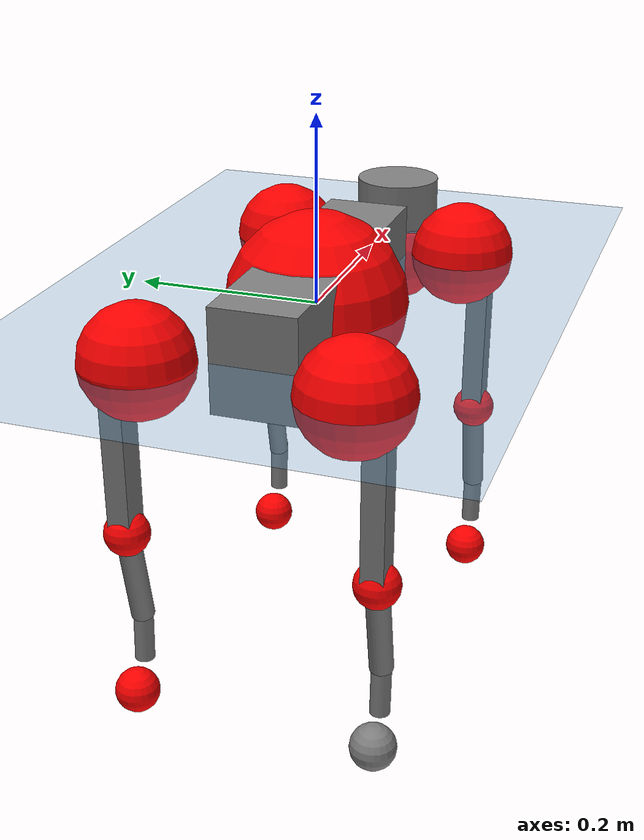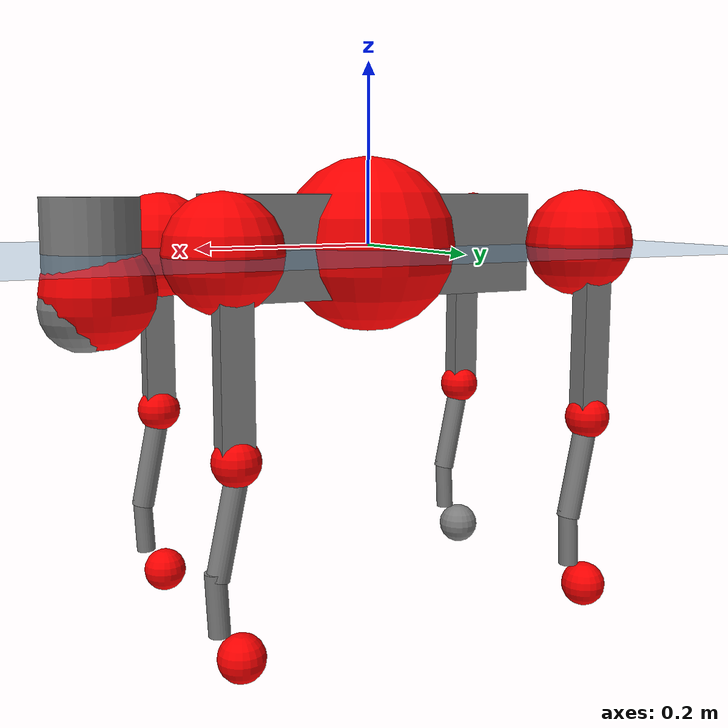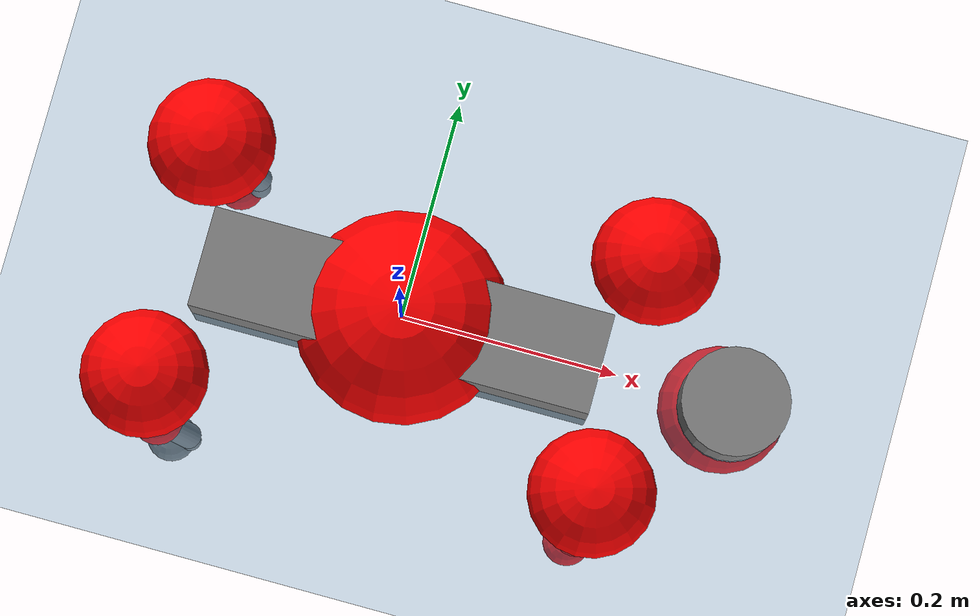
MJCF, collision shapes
<mujoco model="go2">
  <compiler angle="radian" assetdir="assets" balanceinertia="true" inertiafromgeom="false"/>

  <option timestep="0.005" density="1.2" viscosity="2e-05"/>

  <size nkey="1"/>

  <visual>
    <quality shadowsize="8192"/>
    <map shadowclip="0.5"/>
  </visual>

  <default>
    <default class="/">
      <geom contype="0" conaffinity="0" group="1" solref="-1000 -80"/>
      <site size="0.01 0.005 0.005" group="5"/>
      <general forcelimited="true" biastype="affine" gainprm="20" biasprm="0 -20 -0.5"/>
      <default class="go2">
        <joint armature="0.01" damping="0.01" frictionloss="0.2"/>
        <geom condim="1" margin="0.001"/>
        <default class="visual">
          <geom type="mesh" group="2"/>
        </default>
        <default class="collision">
          <geom group="3"/>
          <default class="foot">
            <geom size="0.022 0 0" condim="6" priority="1" friction="0.8 0.02 0.01" solimp="0.015 1 0.022"/>
          </default>
        </default>
        <default class="reward_collision_sphere">
          <geom group="5" rgba="1 0 0 1"/>
        </default>
      </default>
    </default>
  </default>

  <asset>
    <texture type="skybox" colorspace="auto" name="//unnamed_texture_0" builtin="gradient" rgb1="0.95 0.95 0.95" rgb2="0.95 0.95 0.95" width="100" height="600"/>
    <texture type="2d" colorspace="auto" name="texplane" builtin="checker" rgb1="0.345 0.575 0.748" rgb2="0.345 0.575 0.748" markrgb="1 1 1" width="512" height="512"/>
    <material name="MatPlane" class="/" texture="texplane" texuniform="true" texrepeat="2 2" specular="0.9"/>
    <material name="metal" class="/" rgba="0.9 0.95 0.95 1"/>
    <material name="black" class="/" rgba="0 0 0 1"/>
    <material name="white" class="/"/>
    <material name="gray" class="/" rgba="0.671705 0.692426 0.77427 1"/>
    <mesh name="base_0" class="/" file="base_0.obj"/>
    <mesh name="base_1" class="/" file="base_1.obj"/>
    <mesh name="base_2" class="/" file="base_2.obj"/>
    <mesh name="base_3" class="/" file="base_3.obj"/>
    <mesh name="base_4" class="/" file="base_4.obj"/>
    <mesh name="hip_0" class="/" file="hip_0.obj"/>
    <mesh name="hip_1" class="/" file="hip_1.obj"/>
    <mesh name="thigh_0" class="/" file="thigh_0.obj"/>
    <mesh name="thigh_1" class="/" file="thigh_1.obj"/>
    <mesh name="thigh_mirror_0" class="/" file="thigh_mirror_0.obj"/>
    <mesh name="thigh_mirror_1" class="/" file="thigh_mirror_1.obj"/>
    <mesh name="calf_0" class="/" file="calf_0.obj"/>
    <mesh name="calf_1" class="/" file="calf_1.obj"/>
    <mesh name="calf_mirror_0" class="/" file="calf_mirror_0.obj"/>
    <mesh name="calf_mirror_1" class="/" file="calf_mirror_1.obj"/>
    <mesh name="foot" class="/" file="foot.obj"/>
  </asset>

  <worldbody>
    <geom name="floor" class="/" size="100 100 0.125" type="plane" group="0" material="MatPlane"/>
    <light name="toplight_shadow" class="/" pos="0 0 5" dir="0.0990148 0.0990148 -0.990148" type="directional" ambient="0.04 0.04 0.04" diffuse="0.55 0.55 0.55" specular="0.12 0.12 0.12"/>
    <light name="toplight_fill" class="/" pos="0 0 5" dir="0.0990148 0.0990148 -0.990148" type="directional" castshadow="false" ambient="0.04 0.04 0.04" diffuse="0.3 0.3 0.3" specular="0.08 0.08 0.08"/>
    <body name="trunk" childclass="go2" pos="0.000317009 -0.000417562 0.00100175" quat="1 -0.00021761 -3.24661e-05 -4.62648e-05">
      <inertial pos="0.0231068 -0.00231173 -0.00413865" quat="-0.00148067 0.714179 -0.00247018 0.699957" mass="6.36346" diaginertia="0.146544 0.068768 0.0159305"/>
      <joint name="//unnamed_joint_0" type="free" armature="0" damping="0" frictionloss="0"/>
      <geom name="//unnamed_geom_1" class="visual" material="black" mesh="base_0"/>
      <geom name="//unnamed_geom_2" class="visual" material="black" mesh="base_1"/>
      <geom name="//unnamed_geom_3" class="visual" material="black" mesh="base_2"/>
      <geom name="//unnamed_geom_4" class="visual" material="white" mesh="base_3"/>
      <geom name="//unnamed_geom_5" class="visual" material="gray" mesh="base_4"/>
      <geom name="trunk_1" class="collision" size="0.183979 0.0457258 0.0557513" type="box"/>
      <geom name="trunk_2" class="collision" size="0.0489046 0.0440142" pos="0.307073 0 0.00920139" type="cylinder"/>
      <geom name="trunk_3" class="collision" size="0.0459703" pos="0.315693 0 -0.0552083"/>
      <geom name="//unnamed_geom_9" class="reward_collision_sphere" size="0.0978092"/>
      <geom name="//unnamed_geom_10" class="reward_collision_sphere" size="0.0586855" pos="0.301686 0 -0.0414063"/>
      <site name="imu" pos="-0.0300951 0.00216028 0.0410566" size="0.00978092"/>
      <camera name="track" pos="0 -1.87338 0" quat="0.707107 0.707107 0 0" mode="trackcom"/>
      <camera name="ego_camera" pos="0.336164 0 0.0414063" quat="-0.5 -0.5 0.5 0.5"/>
      <body name="FL_hip" pos="0.20788 0.0442157 0.00060951" quat="1 -1.96061e-05 1.58276e-05 -9.14097e-05">
        <inertial pos="-0.00582444 0.000724521 0.000522322" quat="0.505346 0.50289 0.500408 0.491242" mass="0.62988" diaginertia="0.00126852 0.000431376 0.000313569"/>
        <joint name="FL_hip_joint" pos="0 0 0" axis="0.999996 -0.00210196 -0.0016414" stiffness="0.0147759" range="-1.03854 1.05298" armature="0.00948691" damping="0.0116364" frictionloss="0.198372"/>
        <geom name="//unnamed_geom_11" class="visual" material="metal" mesh="hip_0"/>
        <geom name="//unnamed_geom_12" class="visual" material="gray" mesh="hip_1"/>
        <geom name="//unnamed_geom_13" class="collision" size="0.0449922 0.0195618" pos="0 0.0749351 0" quat="0.707107 0.707107 0 0" type="cylinder"/>
        <geom name="//unnamed_geom_14" class="reward_collision_sphere" size="0.0586855" pos="0 0.0655682 0"/>
        <body name="FL_thigh" pos="0.000114237 0.0887667 0.000338824" quat="0.999999 -0.000861907 0.000607615 0.000649169">
          <inertial pos="-0.0046472 -0.0182812 -0.030511" quat="0.832082 0.0851777 -0.0187371 0.547752" mass="1.06818" diaginertia="0.0084111 0.00431879 0.000576751"/>
          <joint name="FL_thigh_joint" pos="0 0 0" axis="-0.00761752 0.999954 -0.00579618" stiffness="0.00101097" range="-1.57771 3.45064" armature="0.0109592" damping="0.00729777" frictionloss="0.198248"/>
          <geom name="//unnamed_geom_15" class="visual" material="metal" mesh="thigh_0"/>
          <geom name="//unnamed_geom_16" class="visual" material="gray" mesh="thigh_1"/>
          <geom name="//unnamed_geom_17" class="collision" size="0.104167 0.0119816 0.0166276" pos="0 0 -0.0979948" quat="0.707107 0 0.707107 0" type="box"/>
          <body name="FL_calf" pos="-0.00140743 -0.000697586 -0.195662" quat="1 0.000234179 9.21461e-05 -0.000292546">
            <inertial pos="0.00503019 -0.000548381 -0.130853" quat="0.708403 -0.00148555 -0.00718356 0.70577" mass="0.222439" diaginertia="0.00215534 0.0010807 3.47524e-05"/>
            <joint name="FL_calf_joint" pos="0 0 0" axis="-0.00410858 0.999988 -0.00249066" stiffness="0.00564112" range="-2.67602 -0.810011" armature="0.00994908" damping="0" frictionloss="0.185709"/>
            <geom name="//unnamed_geom_18" class="visual" material="gray" mesh="calf_0"/>
            <geom name="//unnamed_geom_19" class="visual" material="black" mesh="calf_1"/>
            <geom name="FL_calf0" class="collision" size="0.0117371 0.0586855" pos="0.00861959 0 -0.0552083" quat="0.994493 0 -0.104807 0" type="cylinder"/>
            <geom name="//unnamed_geom_21" class="collision" size="0.010759 0.031788" pos="0.021549 0 -0.136181" quat="0.999688 0 0.0249974 0" type="cylinder"/>
            <geom name="//unnamed_geom_22" class="visual" pos="0 0 -0.19599" quat="1 0 0 0" material="black" mesh="foot"/>
            <geom name="FL_foot" class="foot" size="0.0177636" pos="-0.0021549 0 -0.19599"/>
            <geom name="//unnamed_geom_24" class="reward_collision_sphere" size="0.0244523"/>
            <geom name="//unnamed_geom_25" class="reward_collision_sphere" size="0.0244523" pos="-0.0021549 0 -0.19599"/>
            <site name="FL_foot" class="foot" pos="-0.0021549 0 -0.19599" size="0.00978092"/>
          </body>
        </body>
      </body>
      <body name="FR_hip" pos="0.206422 -0.0423835 -0.00115004" quat="1 2.10835e-05 -2.28148e-07 -4.88113e-06">
        <inertial pos="-0.00619877 -0.00274646 0.000673965" quat="0.500865 0.500826 0.494493 0.503771" mass="0.640302" diaginertia="0.00126853 0.00042951 0.000311462"/>
        <joint name="FR_hip_joint" pos="0 0 0" axis="0.999997 0.00241002 -0.000124935" range="-1.04366 1.08243" armature="0.0101885" damping="0.0145881" frictionloss="0.186602"/>
        <geom name="//unnamed_geom_26" class="visual" pos="0 1.44177e-10 6.18406e-09" quat="4.63268e-05 1 0 0" material="metal" mesh="hip_0"/>
        <geom name="//unnamed_geom_27" class="visual" pos="0 2.33729e-10 -1.52955e-08" quat="4.63268e-05 1 0 0" material="gray" mesh="hip_1"/>
        <geom name="//unnamed_geom_28" class="collision" size="0.0449922 0.0195618" pos="0 -0.0749351 0" quat="0.707107 0.707107 0 0" type="cylinder"/>
        <geom name="//unnamed_geom_29" class="reward_collision_sphere" size="0.0586855" pos="0 -0.0655682 0"/>
        <body name="FR_thigh" pos="0.000534162 -0.0890908 -0.000220105" quat="1 -8.53047e-05 0.000127629 4.31534e-05">
          <inertial pos="-0.00443004 0.0208136 -0.0278633" quat="0.552706 -0.0165618 0.0811317 0.829252" mass="1.06315" diaginertia="0.0085779 0.00420441 0.000578641"/>
          <joint name="FR_thigh_joint" pos="0 0 0" axis="-0.000979974 -0.999991 -0.00400741" stiffness="0.0110255" range="-3.49363 1.55033" armature="0.00891542" damping="0.0205788" frictionloss="0.194878"/>
          <geom name="//unnamed_geom_30" class="visual" material="metal" mesh="thigh_mirror_0"/>
          <geom name="//unnamed_geom_31" class="visual" material="gray" mesh="thigh_mirror_1"/>
          <geom name="//unnamed_geom_32" class="collision" size="0.104167 0.0119816 0.0166276" pos="0 0 -0.0979948" quat="0.707107 0 0.707107 0" type="box"/>
          <body name="FR_calf" pos="0.000558273 2.00542e-05 -0.19355" quat="1 0.000101271 -3.74567e-06 0.000228205">
            <inertial pos="0.00663158 0.00114456 -0.130355" quat="0.703574 -0.00773109 -0.00168919 0.710578" mass="0.232815" diaginertia="0.00225635 0.00109618 3.6101e-05"/>
            <joint name="FR_calf_joint" pos="0 0 0" axis="0.00101243 -0.999986 0.00517813" range="0.816721 2.70506" armature="0.00976836" damping="0.000283557" frictionloss="0.205671"/>
            <geom name="//unnamed_geom_33" class="visual" material="gray" mesh="calf_mirror_0"/>
            <geom name="//unnamed_geom_34" class="visual" material="black" mesh="calf_mirror_1"/>
            <geom name="FR_calf0" class="collision" size="0.0127152 0.0586855" pos="0.0107745 0 -0.0552083" quat="0.995004 0 -0.0998334 0" type="cylinder"/>
            <geom name="//unnamed_geom_36" class="collision" size="0.010759 0.031788" pos="0.021549 0 -0.136181" quat="0.999688 0 0.0249974 0" type="cylinder"/>
            <geom name="//unnamed_geom_37" class="visual" pos="0 0 -0.19599" quat="1 0 0 0" material="black" mesh="foot"/>
            <geom name="FR_foot" class="foot" size="0.0203479" pos="-0.0021549 0 -0.19599"/>
            <geom name="//unnamed_geom_39" class="reward_collision_sphere" size="0.0244523"/>
            <geom name="//unnamed_geom_40" class="reward_collision_sphere" size="0.0244523" pos="-0.0021549 0 -0.19599"/>
            <site name="FR_foot" class="foot" pos="-0.0021549 0 -0.19599" size="0.00978092"/>
          </body>
        </body>
      </body>
      <body name="RL_hip" pos="-0.208755 0.0428938 0.00203507" quat="1 -0.000225783 0.000342059 0.00030767">
        <inertial pos="0.00537293 0.00237006 0.000308313" quat="0.505889 0.495814 0.499124 0.49912" mass="0.622599" diaginertia="0.00130508 0.000438344 0.00031961"/>
        <joint name="RL_hip_joint" pos="0 0 0" axis="-0.999823 -0.0011657 -0.0187616" stiffness="0.00988469" range="-1.01468 1.0677" armature="0.0100436" damping="0.0146242" frictionloss="0.206308"/>
        <geom name="//unnamed_geom_41" class="visual" pos="-1.37042e-09 0 -2.68634e-07" quat="4.63268e-05 0 1 0" material="metal" mesh="hip_0"/>
        <geom name="//unnamed_geom_42" class="visual" pos="-2.22162e-09 0 -2.3824e-07" quat="4.63268e-05 0 1 0" material="gray" mesh="hip_1"/>
        <geom name="//unnamed_geom_43" class="collision" size="0.0449922 0.0195618" pos="0 0.0749351 0" quat="0.707107 0.707107 0 0" type="cylinder"/>
        <geom name="//unnamed_geom_44" class="reward_collision_sphere" size="0.0586855" pos="0 0.0655682 0"/>
        <body name="RL_thigh" pos="-0.00019798 0.0902463 0.00110136" quat="0.999999 -0.000117955 -0.0010358 0.000214897">
          <inertial pos="-0.00395704 -0.0181314 -0.0310946" quat="0.827961 0.0869236 -0.0160292 0.553776" mass="1.04866" diaginertia="0.00869285 0.00420926 0.000594249"/>
          <joint name="RL_thigh_joint" pos="0 0 0" axis="0.00661232 0.999956 -0.0066944" stiffness="0.00375667" range="-0.529638 4.53684" armature="0.00993772" damping="0.0152636" frictionloss="0.198339"/>
          <geom name="//unnamed_geom_45" class="visual" material="metal" mesh="thigh_0"/>
          <geom name="//unnamed_geom_46" class="visual" material="gray" mesh="thigh_1"/>
          <geom name="//unnamed_geom_47" class="collision" size="0.104167 0.0119816 0.0166276" pos="0 0 -0.0979948" quat="0.707107 0 0.707107 0" type="box"/>
          <body name="RL_calf" pos="-0.000609673 -0.00105 -0.19483" quat="1 3.13119e-05 0.000102397 6.7037e-06">
            <inertial pos="0.00676614 0.00110049 -0.13038" quat="0.709341 -2.76475e-05 -0.0049338 0.704848" mass="0.228548" diaginertia="0.00214293 0.00104358 3.45295e-05"/>
            <joint name="RL_calf_joint" pos="0 0 0" axis="-0.00483486 0.999922 -0.0115456" stiffness="0.00913514" range="-2.67471 -0.842702" armature="0.010963" damping="0" frictionloss="0.193521"/>
            <geom name="//unnamed_geom_48" class="visual" material="gray" mesh="calf_0"/>
            <geom name="//unnamed_geom_49" class="visual" material="black" mesh="calf_1"/>
            <geom name="RL_calf0" class="collision" size="0.0127152 0.0586855" pos="0.0107745 0 -0.0552083" quat="0.995004 0 -0.0998334 0" type="cylinder"/>
            <geom name="//unnamed_geom_51" class="collision" size="0.010759 0.031788" pos="0.021549 0 -0.136181" quat="0.999688 0 0.0249974 0" type="cylinder"/>
            <geom name="//unnamed_geom_52" class="visual" pos="0 0 -0.19599" quat="1 0 0 0" material="black" mesh="foot"/>
            <geom name="RL_foot" class="foot" size="0.0194783" pos="-0.0021549 0 -0.19599"/>
            <geom name="//unnamed_geom_54" class="reward_collision_sphere" size="0.0244523"/>
            <geom name="//unnamed_geom_55" class="reward_collision_sphere" size="0.0244523" pos="-0.0021549 0 -0.19599"/>
            <site name="RL_foot" class="foot" pos="-0.0021549 0 -0.19599" size="0.00978092"/>
          </body>
        </body>
      </body>
      <body name="RR_hip" pos="-0.210427 -0.0445528 -0.00183872" quat="0.999999 -1.46105e-06 -0.00121954 -0.000222199">
        <inertial pos="0.00617404 -0.000926275 -0.000387846" quat="0.499561 0.495848 0.499266 0.505279" mass="0.640006" diaginertia="0.0012949 0.000427466 0.000328824"/>
        <joint name="RR_hip_joint" pos="0 0 0" axis="-0.999999 -0.000350575 0.00158637" stiffness="0.00422809" range="-1.04111 1.05579" armature="0.0107749" damping="0.00673681" frictionloss="0.196086"/>
        <geom name="//unnamed_geom_56" class="visual" pos="1.36555e-09 1.44177e-10 -2.74818e-07" quat="2.14617e-09 4.63268e-05 4.63268e-05 -1" material="metal" mesh="hip_0"/>
        <geom name="//unnamed_geom_57" class="visual" pos="2.23367e-09 2.33729e-10 -2.22945e-07" quat="2.14617e-09 4.63268e-05 4.63268e-05 -1" material="gray" mesh="hip_1"/>
        <geom name="//unnamed_geom_58" class="collision" size="0.0449922 0.0195618" pos="0 -0.0749351 0" quat="0.707107 0.707107 0 0" type="cylinder"/>
        <geom name="//unnamed_geom_59" class="reward_collision_sphere" size="0.0586855" pos="0 -0.0655682 0"/>
        <body name="RR_thigh" pos="0.000203296 -0.0889134 -0.000358997" quat="1 0.000164517 0.00019665 0.000592226">
          <inertial pos="-0.00362144 0.0200078 -0.0301923" quat="0.551854 -0.019753 0.0849576 0.829366" mass="1.05631" diaginertia="0.00852171 0.00422871 0.000572669"/>
          <joint name="RR_thigh_joint" pos="0 0 0" axis="0.0028152 -0.999976 0.00626919" stiffness="0.00337705" range="-4.53151 0.57362" armature="0.00864587" damping="0.0188996" frictionloss="0.190455"/>
          <geom name="//unnamed_geom_60" class="visual" material="metal" mesh="thigh_mirror_0"/>
          <geom name="//unnamed_geom_61" class="visual" material="gray" mesh="thigh_mirror_1"/>
          <geom name="//unnamed_geom_62" class="collision" size="0.104167 0.0119816 0.0166276" pos="0 0 -0.0979948" quat="0.707107 0 0.707107 0" type="box"/>
          <body name="RR_calf" pos="0.00171297 -0.000696985 -0.196987" quat="1 -0.000120723 0.000118631 0.000132991">
            <inertial pos="0.00700602 0.0011174 -0.130549" quat="0.703619 -0.00455799 0.0016748 0.710561" mass="0.227128" diaginertia="0.00213961 0.00104754 3.48396e-05"/>
            <joint name="RR_calf_joint" pos="0 0 0" axis="-0.000166097 -1 -0.000253356" range="0.874546 2.71332" armature="0.00943724" damping="0.0124411" frictionloss="0.192395"/>
            <geom name="//unnamed_geom_63" class="visual" material="gray" mesh="calf_mirror_0"/>
            <geom name="//unnamed_geom_64" class="visual" material="black" mesh="calf_mirror_1"/>
            <geom name="RR_calf0" class="collision" size="0.0127152 0.0586855" pos="0.0107745 0 -0.0552083" quat="0.995004 0 -0.0998334 0" type="cylinder"/>
            <geom name="//unnamed_geom_66" class="collision" size="0.010759 0.031788" pos="0.021549 0 -0.136181" quat="0.999688 0 0.0249974 0" type="cylinder"/>
            <geom name="//unnamed_geom_67" class="visual" pos="0 0 -0.19599" quat="1 0 0 0" material="black" mesh="foot"/>
            <geom name="RR_foot" class="foot" size="0.0251067" pos="-0.0021549 0 -0.19599"/>
            <geom name="//unnamed_geom_69" class="reward_collision_sphere" size="0.0244523"/>
            <geom name="//unnamed_geom_70" class="reward_collision_sphere" size="0.0244523" pos="-0.0021549 0 -0.19599"/>
            <site name="RR_foot" class="foot" pos="-0.0021549 0 -0.19599" size="0.00978092"/>
          </body>
        </body>
      </body>
    </body>
  </worldbody>

  <contact>
    <pair class="/" geom1="floor" geom2="FL_foot" name="//unnamed_contact_0"/>
    <pair class="/" geom1="floor" geom2="FR_foot" name="//unnamed_contact_1"/>
    <pair class="/" geom1="floor" geom2="RL_foot" name="//unnamed_contact_2"/>
    <pair class="/" geom1="floor" geom2="RR_foot" name="//unnamed_contact_3"/>
  </contact>

  <actuator>
    <general name="FL_hip" class="/" joint="FL_hip_joint" forcerange="-22.4849 22.4849" gainprm="19.712" biasprm="0 -19.712 -0.493953"/>
    <general name="FL_thigh" class="/" joint="FL_thigh_joint" forcerange="-23.307 23.307" gainprm="19.712" biasprm="0 -19.712 -0.493953"/>
    <general name="FL_calf" class="/" joint="FL_calf_joint" forcerange="-44.9119 44.9119" gainprm="19.712" biasprm="0 -19.712 -0.493953"/>
    <general name="FR_hip" class="/" joint="FR_hip_joint" forcerange="-23.594 23.594" gainprm="19.712" biasprm="0 -19.712 -0.493953"/>
    <general name="FR_thigh" class="/" joint="FR_thigh_joint" forcerange="-22.9874 22.9874" gainprm="19.712" biasprm="0 -19.712 -0.493953"/>
    <general name="FR_calf" class="/" joint="FR_calf_joint" forcerange="-42.6864 42.6864" gainprm="19.712" biasprm="0 -19.712 -0.493953"/>
    <general name="RL_hip" class="/" joint="RL_hip_joint" forcerange="-24.0842 24.0842" gainprm="19.712" biasprm="0 -19.712 -0.493953"/>
    <general name="RL_thigh" class="/" joint="RL_thigh_joint" forcerange="-23.3649 23.3649" gainprm="19.712" biasprm="0 -19.712 -0.493953"/>
    <general name="RL_calf" class="/" joint="RL_calf_joint" forcerange="-42.5624 42.5624" gainprm="19.712" biasprm="0 -19.712 -0.493953"/>
    <general name="RR_hip" class="/" joint="RR_hip_joint" forcerange="-23.7456 23.7456" gainprm="19.712" biasprm="0 -19.712 -0.493953"/>
    <general name="RR_thigh" class="/" joint="RR_thigh_joint" forcerange="-22.3041 22.3041" gainprm="19.712" biasprm="0 -19.712 -0.493953"/>
    <general name="RR_calf" class="/" joint="RR_calf_joint" forcerange="-47.8795 47.8795" gainprm="19.712" biasprm="0 -19.712 -0.493953"/>
  </actuator>

  <sensor>
    <gyro site="imu" name="imu_angular_velocity"/>
    <velocimeter site="imu" name="imu_linear_velocity"/>
    <framelinvel objtype="site" objname="FL_foot" name="FL_foot_global_linear_velocity"/>
    <framelinvel objtype="site" objname="FR_foot" name="FR_foot_global_linear_velocity"/>
    <framelinvel objtype="site" objname="RL_foot" name="RL_foot_global_linear_velocity"/>
    <framelinvel objtype="site" objname="RR_foot" name="RR_foot_global_linear_velocity"/>
  </sensor>

  <keyframe>
    <key name="home" qpos="0 0 0.325 1 0 0 0 0.1 0.8 -1.5 -0.1 -0.8 1.5 -0.1 0.8 -1.5 0.1 -0.8 1.5"/>
  </keyframe>
</mujoco>
